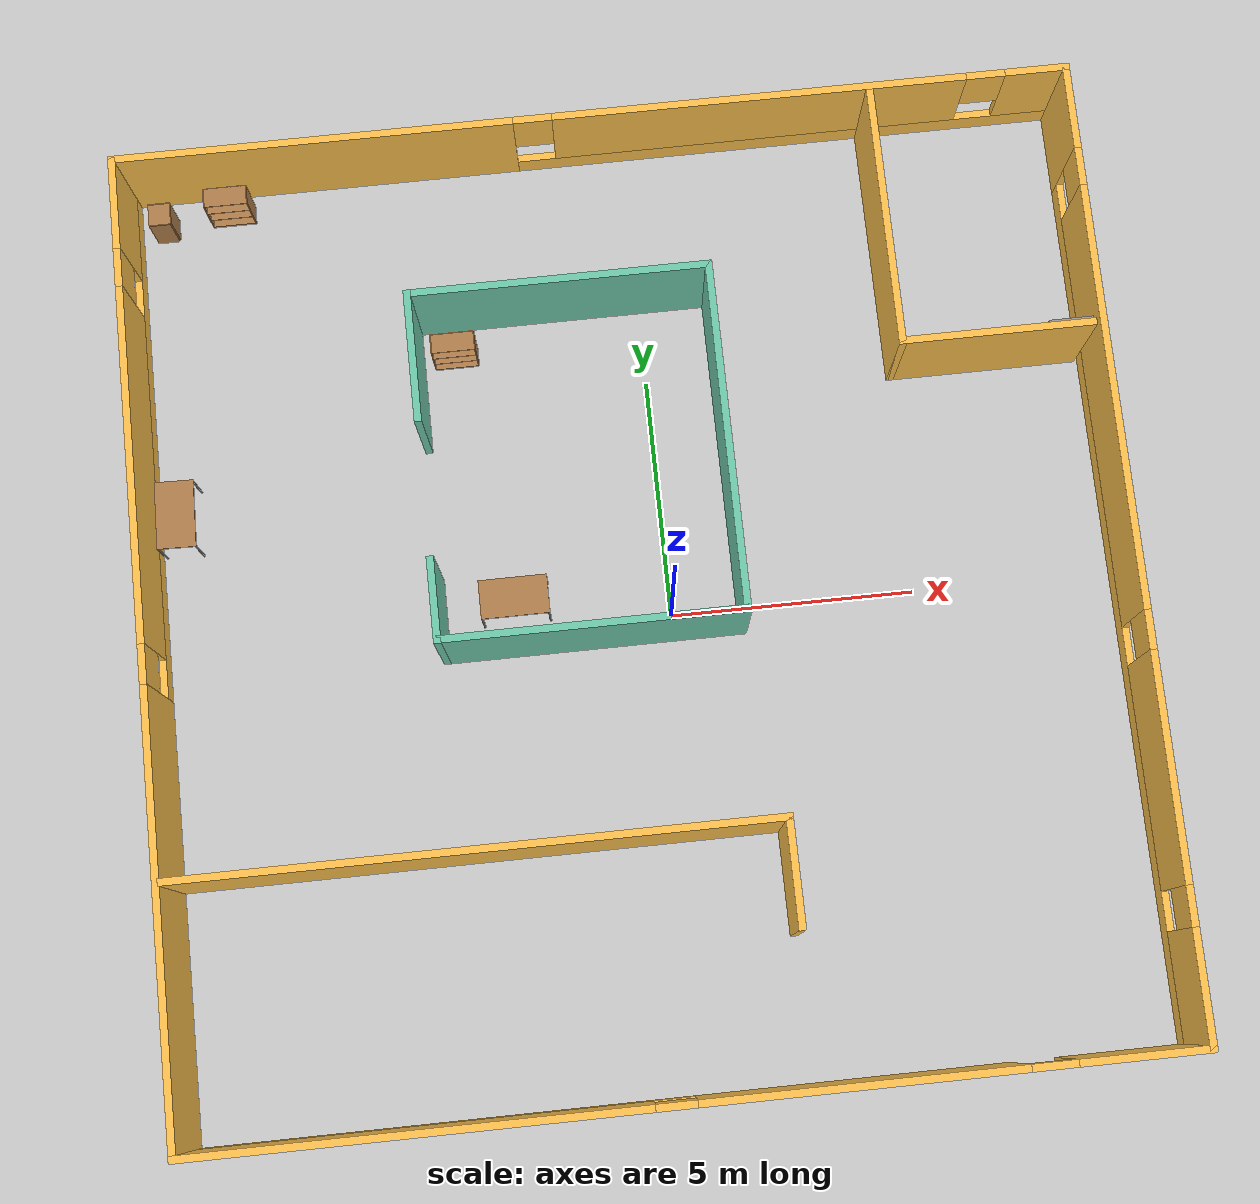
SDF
<sdf version="1.6">
 <world name="default">
  <model name="ground_plane">
   <static>1</static>
   <link name="link">
    <collision name="collision">
     <geometry><plane><normal>0 0 1</normal><size>100 100</size></plane></geometry>
     <surface><friction><ode><mu>100</mu><mu2>50</mu2></ode></friction></surface>
    </collision>
    <visual name="visual">
     <cast_shadows>0</cast_shadows>
     <geometry><plane><normal>0 0 1</normal><size>100 100</size></plane></geometry>
     <material>
      <script><uri>file://media/materials/scripts/gazebo.material</uri><name>Gazebo/Grey</name></script>
     </material>
    </visual>
   </link>
  </model>
  <model name="better_office">
   <pose>-0.62787 0.18736 0 0 -0 0</pose>
   <link name="Door_0">
    <collision name="Door_0_Collision">
     <geometry><box><size>0.9 0.17 2</size></box></geometry>
     <pose>0 0 1 0 -0 0</pose>
    </collision>
    <visual name="Door_0_Visual">
     <pose>0 0 1 0 -0 0</pose>
     <geometry><box><size>0.9 0.17 2</size></box></geometry>
     <material>
      <script><uri>file://media/materials/scripts/gazebo.material</uri><name>Gazebo/Grey</name></script>
     </material>
    </visual>
    <pose>9.27377 4.6409 0 0 -0 0</pose>
   </link>
   <link name="Wall_11">
    <pose>0 9.925 0 0 -0 0</pose>
    <visual name="Wall_11_Visual_0">
     <pose>-5.73664 0 1.25 0 -0 0</pose>
     <geometry><box><size>8.27672 0.15 2.5</size></box></geometry>
     <material>
      <script><uri>file://media/materials/scripts/gazebo.material</uri><name>Gazebo/Grey</name></script>
      <ambient>1 0.764706 0.305882 1</ambient>
     </material>
    </visual>
    <collision name="Wall_11_Collision_0">
     <geometry><box><size>8.27672 0.15 2.5</size></box></geometry>
     <pose>-5.73664 0 1.25 0 -0 0</pose>
    </collision>
    <visual name="Wall_11_Visual_1">
     <pose>4.13836 0 0.25 0 -0 0</pose>
     <geometry><box><size>11.4733 0.15 0.5</size></box></geometry>
     <material>
      <script><uri>file://media/materials/scripts/gazebo.material</uri><name>Gazebo/Grey</name></script>
      <ambient>1 0.764706 0.305882 1</ambient>
     </material>
    </visual>
    <collision name="Wall_11_Collision_1">
     <geometry><box><size>11.4733 0.15 0.5</size></box></geometry>
     <pose>4.13836 0 0.25 0 -0 0</pose>
    </collision>
    <visual name="Wall_11_Visual_2">
     <pose>3.47169 0 1.5 0 -0 0</pose>
     <geometry><box><size>8.53993 0.15 2</size></box></geometry>
     <material>
      <script><uri>file://media/materials/scripts/gazebo.material</uri><name>Gazebo/Grey</name></script>
      <ambient>1 0.764706 0.305882 1</ambient>
     </material>
    </visual>
    <collision name="Wall_11_Collision_2">
     <geometry><box><size>8.53993 0.15 2</size></box></geometry>
     <pose>3.47169 0 1.5 0 -0 0</pose>
    </collision>
    <visual name="Wall_11_Visual_3">
     <pose>9.20833 0 1.5 0 -0 0</pose>
     <geometry><box><size>1.33335 0.15 2</size></box></geometry>
     <material>
      <script><uri>file://media/materials/scripts/gazebo.material</uri><name>Gazebo/Grey</name></script>
      <ambient>1 0.764706 0.305882 1</ambient>
     </material>
    </visual>
    <collision name="Wall_11_Collision_3">
     <geometry><box><size>1.33335 0.15 2</size></box></geometry>
     <pose>9.20833 0 1.5 0 -0 0</pose>
    </collision>
    <visual name="Wall_11_Visual_4">
     <pose>-1.19828 0 1.9 0 -0 0</pose>
     <geometry><box><size>0.8 0.15 1.2</size></box></geometry>
     <material>
      <script><uri>file://media/materials/scripts/gazebo.material</uri><name>Gazebo/Grey</name></script>
      <ambient>1 0.764706 0.305882 1</ambient>
     </material>
    </visual>
    <collision name="Wall_11_Collision_4">
     <geometry><box><size>0.8 0.15 1.2</size></box></geometry>
     <pose>-1.19828 0 1.9 0 -0 0</pose>
    </collision>
    <visual name="Wall_11_Visual_5">
     <pose>8.14165 0 1.9 0 -0 0</pose>
     <geometry><box><size>0.8 0.15 1.2</size></box></geometry>
     <material>
      <script><uri>file://media/materials/scripts/gazebo.material</uri><name>Gazebo/Grey</name></script>
      <ambient>1 0.764706 0.305882 1</ambient>
     </material>
    </visual>
    <collision name="Wall_11_Collision_5">
     <geometry><box><size>0.8 0.15 1.2</size></box></geometry>
     <pose>8.14165 0 1.9 0 -0 0</pose>
    </collision>
   </link>
   <link name="Wall_12">
    <pose>9.8 0 0 0 0 -1.5708</pose>
    <visual name="Wall_12_Visual_0">
     <pose>-9.07711 0 1.25 0 -0 0</pose>
     <geometry><box><size>1.84579 0.15 2.5</size></box></geometry>
     <material>
      <script><uri>file://media/materials/scripts/gazebo.material</uri><name>Gazebo/Grey</name></script>
      <ambient>1 0.764706 0.305882 1</ambient>
     </material>
    </visual>
    <collision name="Wall_12_Collision_0">
     <geometry><box><size>1.84579 0.15 2.5</size></box></geometry>
     <pose>-9.07711 0 1.25 0 -0 0</pose>
    </collision>
    <visual name="Wall_12_Visual_1">
     <pose>0.922894 0 0.25 0 -0 0</pose>
     <geometry><box><size>18.1542 0.15 0.5</size></box></geometry>
     <material>
      <script><uri>file://media/materials/scripts/gazebo.material</uri><name>Gazebo/Grey</name></script>
      <ambient>1 0.764706 0.305882 1</ambient>
     </material>
    </visual>
    <collision name="Wall_12_Collision_1">
     <geometry><box><size>18.1542 0.15 0.5</size></box></geometry>
     <pose>0.922894 0 0.25 0 -0 0</pose>
    </collision>
    <visual name="Wall_12_Visual_2">
     <pose>-2.94273 0 1.5 0 -0 0</pose>
     <geometry><box><size>8.82296 0.15 2</size></box></geometry>
     <material>
      <script><uri>file://media/materials/scripts/gazebo.material</uri><name>Gazebo/Grey</name></script>
      <ambient>1 0.764706 0.305882 1</ambient>
     </material>
    </visual>
    <collision name="Wall_12_Collision_2">
     <geometry><box><size>8.82296 0.15 2</size></box></geometry>
     <pose>-2.94273 0 1.5 0 -0 0</pose>
    </collision>
    <visual name="Wall_12_Visual_3">
     <pose>4.55752 0 1.5 0 -0 0</pose>
     <geometry><box><size>4.57754 0.15 2</size></box></geometry>
     <material>
      <script><uri>file://media/materials/scripts/gazebo.material</uri><name>Gazebo/Grey</name></script>
      <ambient>1 0.764706 0.305882 1</ambient>
     </material>
    </visual>
    <collision name="Wall_12_Collision_3">
     <geometry><box><size>4.57754 0.15 2</size></box></geometry>
     <pose>4.55752 0 1.5 0 -0 0</pose>
    </collision>
    <visual name="Wall_12_Visual_4">
     <pose>8.82314 0 1.5 0 -0 0</pose>
     <geometry><box><size>2.35371 0.15 2</size></box></geometry>
     <material>
      <script><uri>file://media/materials/scripts/gazebo.material</uri><name>Gazebo/Grey</name></script>
      <ambient>1 0.764706 0.305882 1</ambient>
     </material>
    </visual>
    <collision name="Wall_12_Collision_4">
     <geometry><box><size>2.35371 0.15 2</size></box></geometry>
     <pose>8.82314 0 1.5 0 -0 0</pose>
    </collision>
    <visual name="Wall_12_Visual_5">
     <pose>-7.75421 0 1.9 0 -0 0</pose>
     <geometry><box><size>0.8 0.15 1.2</size></box></geometry>
     <material>
      <script><uri>file://media/materials/scripts/gazebo.material</uri><name>Gazebo/Grey</name></script>
      <ambient>1 0.764706 0.305882 1</ambient>
     </material>
    </visual>
    <collision name="Wall_12_Collision_5">
     <geometry><box><size>0.8 0.15 1.2</size></box></geometry>
     <pose>-7.75421 0 1.9 0 -0 0</pose>
    </collision>
    <visual name="Wall_12_Visual_6">
     <pose>1.86875 0 1.9 0 -0 0</pose>
     <geometry><box><size>0.8 0.15 1.2</size></box></geometry>
     <material>
      <script><uri>file://media/materials/scripts/gazebo.material</uri><name>Gazebo/Grey</name></script>
      <ambient>1 0.764706 0.305882 1</ambient>
     </material>
    </visual>
    <collision name="Wall_12_Collision_6">
     <geometry><box><size>0.8 0.15 1.2</size></box></geometry>
     <pose>1.86875 0 1.9 0 -0 0</pose>
    </collision>
    <visual name="Wall_12_Visual_7">
     <pose>7.24629 0 1.9 0 -0 0</pose>
     <geometry><box><size>0.8 0.15 1.2</size></box></geometry>
     <material>
      <script><uri>file://media/materials/scripts/gazebo.material</uri><name>Gazebo/Grey</name></script>
      <ambient>1 0.764706 0.305882 1</ambient>
     </material>
    </visual>
    <collision name="Wall_12_Collision_7">
     <geometry><box><size>0.8 0.15 1.2</size></box></geometry>
     <pose>7.24629 0 1.9 0 -0 0</pose>
    </collision>
   </link>
   <link name="Wall_13">
    <pose>0 -9.925 0 0 -0 3.14159</pose>
    <visual name="Wall_13_Visual_0">
     <pose>-8.56113 0 1.25 0 -0 0</pose>
     <geometry><box><size>2.62773 0.15 2.5</size></box></geometry>
     <material>
      <script><uri>file://media/materials/scripts/gazebo.material</uri><name>Gazebo/Grey</name></script>
      <ambient>1 0.764706 0.305882 1</ambient>
     </material>
    </visual>
    <collision name="Wall_13_Collision_0">
     <geometry><box><size>2.62773 0.15 2.5</size></box></geometry>
     <pose>-8.56113 0 1.25 0 -0 0</pose>
    </collision>
    <visual name="Wall_13_Visual_1">
     <pose>-3.19904 0 1.25 0 -0 0</pose>
     <geometry><box><size>6.29646 0.15 2.5</size></box></geometry>
     <material>
      <script><uri>file://media/materials/scripts/gazebo.material</uri><name>Gazebo/Grey</name></script>
      <ambient>1 0.764706 0.305882 1</ambient>
     </material>
    </visual>
    <collision name="Wall_13_Collision_1">
     <geometry><box><size>6.29646 0.15 2.5</size></box></geometry>
     <pose>-3.19904 0 1.25 0 -0 0</pose>
    </collision>
    <visual name="Wall_13_Visual_2">
     <pose>4.9121 0 0.25 0 -0 0</pose>
     <geometry><box><size>9.92581 0.15 0.5</size></box></geometry>
     <material>
      <script><uri>file://media/materials/scripts/gazebo.material</uri><name>Gazebo/Grey</name></script>
      <ambient>1 0.764706 0.305882 1</ambient>
     </material>
    </visual>
    <collision name="Wall_13_Collision_2">
     <geometry><box><size>9.92581 0.15 0.5</size></box></geometry>
     <pose>4.9121 0 0.25 0 -0 0</pose>
    </collision>
    <visual name="Wall_13_Visual_3">
     <pose>5.3121 0 1.5 0 -0 0</pose>
     <geometry><box><size>9.12581 0.15 2</size></box></geometry>
     <material>
      <script><uri>file://media/materials/scripts/gazebo.material</uri><name>Gazebo/Grey</name></script>
      <ambient>1 0.764706 0.305882 1</ambient>
     </material>
    </visual>
    <collision name="Wall_13_Collision_3">
     <geometry><box><size>9.12581 0.15 2</size></box></geometry>
     <pose>5.3121 0 1.5 0 -0 0</pose>
    </collision>
    <visual name="Wall_13_Visual_4">
     <pose>0.349194 0 1.9 0 -0 0</pose>
     <geometry><box><size>0.8 0.15 1.2</size></box></geometry>
     <material>
      <script><uri>file://media/materials/scripts/gazebo.material</uri><name>Gazebo/Grey</name></script>
      <ambient>1 0.764706 0.305882 1</ambient>
     </material>
    </visual>
    <collision name="Wall_13_Collision_4">
     <geometry><box><size>0.8 0.15 1.2</size></box></geometry>
     <pose>0.349194 0 1.9 0 -0 0</pose>
    </collision>
    <visual name="Wall_13_Visual_5">
     <pose>-6.79727 0 2.25 0 -0 0</pose>
     <geometry><box><size>0.9 0.15 0.5</size></box></geometry>
     <material>
      <script><uri>file://media/materials/scripts/gazebo.material</uri><name>Gazebo/Grey</name></script>
      <ambient>1 0.764706 0.305882 1</ambient>
     </material>
    </visual>
    <collision name="Wall_13_Collision_5">
     <geometry><box><size>0.9 0.15 0.5</size></box></geometry>
     <pose>-6.79727 0 2.25 0 -0 0</pose>
    </collision>
   </link>
   <link name="Wall_14">
    <pose>-9.8 0 0 0 -0 1.5708</pose>
    <visual name="Wall_14_Visual_0">
     <pose>-5.46218 0 1.25 0 -0 0</pose>
     <geometry><box><size>9.07564 0.15 2.5</size></box></geometry>
     <material>
      <script><uri>file://media/materials/scripts/gazebo.material</uri><name>Gazebo/Grey</name></script>
      <ambient>1 0.764706 0.305882 1</ambient>
     </material>
    </visual>
    <collision name="Wall_14_Collision_0">
     <geometry><box><size>9.07564 0.15 2.5</size></box></geometry>
     <pose>-5.46218 0 1.25 0 -0 0</pose>
    </collision>
    <visual name="Wall_14_Visual_1">
     <pose>4.53782 0 0.25 0 -0 0</pose>
     <geometry><box><size>10.9244 0.15 0.5</size></box></geometry>
     <material>
      <script><uri>file://media/materials/scripts/gazebo.material</uri><name>Gazebo/Grey</name></script>
      <ambient>1 0.764706 0.305882 1</ambient>
     </material>
    </visual>
    <collision name="Wall_14_Collision_1">
     <geometry><box><size>10.9244 0.15 0.5</size></box></geometry>
     <pose>4.53782 0 0.25 0 -0 0</pose>
    </collision>
    <visual name="Wall_14_Visual_2">
     <pose>3.54417 0 1.5 0 -0 0</pose>
     <geometry><box><size>7.33706 0.15 2</size></box></geometry>
     <material>
      <script><uri>file://media/materials/scripts/gazebo.material</uri><name>Gazebo/Grey</name></script>
      <ambient>1 0.764706 0.305882 1</ambient>
     </material>
    </visual>
    <collision name="Wall_14_Collision_2">
     <geometry><box><size>7.33706 0.15 2</size></box></geometry>
     <pose>3.54417 0 1.5 0 -0 0</pose>
    </collision>
    <visual name="Wall_14_Visual_3">
     <pose>9.00635 0 1.5 0 -0 0</pose>
     <geometry><box><size>1.9873 0.15 2</size></box></geometry>
     <material>
      <script><uri>file://media/materials/scripts/gazebo.material</uri><name>Gazebo/Grey</name></script>
      <ambient>1 0.764706 0.305882 1</ambient>
     </material>
    </visual>
    <collision name="Wall_14_Collision_3">
     <geometry><box><size>1.9873 0.15 2</size></box></geometry>
     <pose>9.00635 0 1.5 0 -0 0</pose>
    </collision>
    <visual name="Wall_14_Visual_4">
     <pose>-0.524364 0 1.9 0 -0 0</pose>
     <geometry><box><size>0.8 0.15 1.2</size></box></geometry>
     <material>
      <script><uri>file://media/materials/scripts/gazebo.material</uri><name>Gazebo/Grey</name></script>
      <ambient>1 0.764706 0.305882 1</ambient>
     </material>
    </visual>
    <collision name="Wall_14_Collision_4">
     <geometry><box><size>0.8 0.15 1.2</size></box></geometry>
     <pose>-0.524364 0 1.9 0 -0 0</pose>
    </collision>
    <visual name="Wall_14_Visual_5">
     <pose>7.6127 0 1.9 0 -0 0</pose>
     <geometry><box><size>0.8 0.15 1.2</size></box></geometry>
     <material>
      <script><uri>file://media/materials/scripts/gazebo.material</uri><name>Gazebo/Grey</name></script>
      <ambient>1 0.764706 0.305882 1</ambient>
     </material>
    </visual>
    <collision name="Wall_14_Collision_5">
     <geometry><box><size>0.8 0.15 1.2</size></box></geometry>
     <pose>7.6127 0 1.9 0 -0 0</pose>
    </collision>
   </link>
   <link name="Wall_17">
    <collision name="Wall_17_Collision">
     <geometry><box><size>2.75 0.15 2.5</size></box></geometry>
     <pose>0 0 1.25 0 -0 0</pose>
    </collision>
    <visual name="Wall_17_Visual">
     <pose>0 0 1.25 0 -0 0</pose>
     <geometry><box><size>2.75 0.15 2.5</size></box></geometry>
     <material>
      <script><uri>file://media/materials/scripts/gazebo.material</uri><name>Gazebo/Grey</name></script>
      <ambient>0.435294 0.796078 0.67451 1</ambient>
     </material>
    </visual>
    <pose>-4.0561 5.16257 0 0 -0 1.5708</pose>
   </link>
   <link name="Wall_18">
    <collision name="Wall_18_Collision">
     <geometry><box><size>6.25 0.15 2.5</size></box></geometry>
     <pose>0 0 1.25 0 -0 0</pose>
    </collision>
    <visual name="Wall_18_Visual">
     <pose>0 0 1.25 0 -0 0</pose>
     <geometry><box><size>6.25 0.15 2.5</size></box></geometry>
     <material>
      <script><uri>file://media/materials/scripts/gazebo.material</uri><name>Gazebo/Grey</name></script>
      <ambient>0.435294 0.796078 0.67451 1</ambient>
     </material>
    </visual>
    <pose>-1.0061 6.46257 0 0 -0 0</pose>
   </link>
   <link name="Wall_19">
    <collision name="Wall_19_Collision">
     <geometry><box><size>7.25 0.15 2.5</size></box></geometry>
     <pose>0 0 1.25 0 -0 0</pose>
    </collision>
    <visual name="Wall_19_Visual">
     <pose>0 0 1.25 0 -0 0</pose>
     <geometry><box><size>7.25 0.15 2.5</size></box></geometry>
     <material>
      <script><uri>file://media/materials/scripts/gazebo.material</uri><name>Gazebo/Grey</name></script>
      <ambient>0.435294 0.796078 0.67451 1</ambient>
     </material>
    </visual>
    <pose>2.0439 2.91257 0 0 0 -1.5708</pose>
   </link>
   <link name="Wall_20">
    <collision name="Wall_20_Collision">
     <geometry><box><size>6.25 0.15 2.5</size></box></geometry>
     <pose>0 0 1.25 0 -0 0</pose>
    </collision>
    <visual name="Wall_20_Visual">
     <pose>0 0 1.25 0 -0 0</pose>
     <geometry><box><size>6.25 0.15 2.5</size></box></geometry>
     <material>
      <script><uri>file://media/materials/scripts/gazebo.material</uri><name>Gazebo/Grey</name></script>
      <ambient>0.435294 0.796078 0.67451 1</ambient>
     </material>
    </visual>
    <pose>-1.0061 -0.637427 0 0 -0 3.14159</pose>
   </link>
   <link name="Wall_21">
    <collision name="Wall_21_Collision">
     <geometry><box><size>1.75 0.15 2.5</size></box></geometry>
     <pose>0 0 1.25 0 -0 0</pose>
    </collision>
    <visual name="Wall_21_Visual">
     <pose>0 0 1.25 0 -0 0</pose>
     <geometry><box><size>1.75 0.15 2.5</size></box></geometry>
     <material>
      <script><uri>file://media/materials/scripts/gazebo.material</uri><name>Gazebo/Grey</name></script>
      <ambient>0.435294 0.796078 0.67451 1</ambient>
     </material>
    </visual>
    <pose>-4.0561 0.162573 0 0 -0 1.5708</pose>
   </link>
   <link name="Wall_23">
    <collision name="Wall_23_Collision">
     <geometry><box><size>12.2123 0.15 2.5</size></box></geometry>
     <pose>0 0 1.25 0 -0 0</pose>
    </collision>
    <visual name="Wall_23_Visual">
     <pose>0 0 1.25 0 -0 0</pose>
     <geometry><box><size>12.2123 0.15 2.5</size></box></geometry>
     <material>
      <script><uri>file://media/materials/scripts/gazebo.material</uri><name>Gazebo/Grey</name></script>
      <ambient>1 0.764706 0.305882 1</ambient>
     </material>
    </visual>
    <pose>-3.65799 -4.76979 0 0 -0 0</pose>
   </link>
   <link name="Wall_26">
    <collision name="Wall_26_Collision">
     <geometry><box><size>5.5 0.15 2.5</size></box></geometry>
     <pose>0 0 1.25 0 -0 0</pose>
    </collision>
    <visual name="Wall_26_Visual">
     <pose>0 0 1.25 0 -0 0</pose>
     <geometry><box><size>5.5 0.15 2.5</size></box></geometry>
     <material>
      <script><uri>file://media/materials/scripts/gazebo.material</uri><name>Gazebo/Grey</name></script>
      <ambient>1 0.764706 0.305882 1</ambient>
     </material>
    </visual>
    <pose>5.73591 7.13117 0 0 0 -1.5708</pose>
   </link>
   <link name="Wall_27">
    <collision name="Wall_27_Collision">
     <geometry><box><size>4 0.15 2.5</size></box></geometry>
     <pose>0 0 1.25 0 -0 0</pose>
    </collision>
    <visual name="Wall_27_Visual">
     <pose>0 0 1.25 0 -0 0</pose>
     <geometry><box><size>4 0.15 2.5</size></box></geometry>
     <material>
      <script><uri>file://media/materials/scripts/gazebo.material</uri><name>Gazebo/Grey</name></script>
      <ambient>1 0.764706 0.305882 1</ambient>
     </material>
    </visual>
    <pose>7.66091 4.45617 0 0 -0 0</pose>
   </link>
   <link name="Wall_29">
    <collision name="Wall_29_Collision">
     <geometry><box><size>2.25 0.15 2.5</size></box></geometry>
     <pose>0 0 1.25 0 -0 0</pose>
    </collision>
    <visual name="Wall_29_Visual">
     <pose>0 0 1.25 0 -0 0</pose>
     <geometry><box><size>2.25 0.15 2.5</size></box></geometry>
     <material>
      <script><uri>file://media/materials/scripts/gazebo.material</uri><name>Gazebo/Grey</name></script>
      <ambient>1 0.764706 0.305882 1</ambient>
     </material>
    </visual>
    <pose>2.37315 -5.81979 0 0 0 -1.5708</pose>
   </link>
   <static>1</static>
  </model>
  <model name="cabinet">
   <static>1</static>
   <link name="cabinet_bottom_plate">
    <inertial>
     <pose>0 0 -1 0 -0 0</pose>
     <inertia><ixx>2.05</ixx><ixy>0</ixy><ixz>0</ixz><iyy>2.05</iyy><iyz>0</iyz><izz>2.05</izz></inertia>
     <mass>25</mass>
    </inertial>
    <collision name="cabinet_bottom_plate_geom">
     <pose>0 0 0.01 0 -0 0</pose>
     <geometry><box><size>0.45 0.45 0.02</size></box></geometry>
    </collision>
    <visual name="cabinet_bottom_plate_geom_visual">
     <pose>0 0 0.01 0 -0 0</pose>
     <geometry><box><size>0.45 0.45 0.02</size></box></geometry>
     <material>
      <script><uri>file://media/materials/scripts/gazebo.material</uri><name>Gazebo/Wood</name></script>
     </material>
    </visual>
    <collision name="cabinet_bottom_plate_geom_cabinet_back_plate">
     <pose>0.235 0 0.51 0 -0 0</pose>
     <geometry><box><size>0.02 0.45 1.02</size></box></geometry>
    </collision>
    <visual name="cabinet_bottom_plate_geom_cabinet_back_plate_visual">
     <pose>0.235 0 0.51 0 -0 0</pose>
     <geometry><box><size>0.02 0.45 1.02</size></box></geometry>
     <material>
      <script><uri>file://media/materials/scripts/gazebo.material</uri><name>Gazebo/Wood</name></script>
     </material>
    </visual>
    <collision name="cabinet_bottom_plate_geom_cabinet_left_plate">
     <pose>0 0.235 0.51 0 -0 0</pose>
     <geometry><box><size>0.45 0.02 1.02</size></box></geometry>
    </collision>
    <visual name="cabinet_bottom_plate_geom_cabinet_left_plate_visual">
     <pose>0 0.235 0.51 0 -0 0</pose>
     <geometry><box><size>0.45 0.02 1.02</size></box></geometry>
     <material>
      <script><uri>file://media/materials/scripts/gazebo.material</uri><name>Gazebo/Wood</name></script>
     </material>
    </visual>
    <collision name="cabinet_bottom_plate_geom_cabinet_middle_plate">
     <pose>0 0 0.51 0 -0 0</pose>
     <geometry><box><size>0.45 0.45 0.02</size></box></geometry>
    </collision>
    <visual name="cabinet_bottom_plate_geom_cabinet_middle_plate_visual">
     <pose>0 0 0.51 0 -0 0</pose>
     <geometry><box><size>0.45 0.45 0.02</size></box></geometry>
     <material>
      <script><uri>file://media/materials/scripts/gazebo.material</uri><name>Gazebo/Wood</name></script>
     </material>
    </visual>
    <collision name="cabinet_bottom_plate_geom_cabinet_right_plate">
     <pose>0 -0.235 0.51 0 -0 0</pose>
     <geometry><box><size>0.45 0.02 1.02</size></box></geometry>
    </collision>
    <visual name="cabinet_bottom_plate_geom_cabinet_right_plate_visual">
     <pose>0 -0.235 0.51 0 -0 0</pose>
     <geometry><box><size>0.45 0.02 1.02</size></box></geometry>
     <material>
      <script><uri>file://media/materials/scripts/gazebo.material</uri><name>Gazebo/Wood</name></script>
     </material>
    </visual>
    <collision name="cabinet_bottom_plate_geom_cabinet_top_plate">
     <pose>0 0 1.01 0 -0 0</pose>
     <geometry><box><size>0.45 0.45 0.02</size></box></geometry>
    </collision>
    <visual name="cabinet_bottom_plate_geom_cabinet_top_plate_visual">
     <pose>0 0 1.01 0 -0 0</pose>
     <geometry><box><size>0.45 0.45 0.02</size></box></geometry>
     <material>
      <script><uri>file://media/materials/scripts/gazebo.material</uri><name>Gazebo/Wood</name></script>
     </material>
    </visual>
   </link>
   <pose>-9.81477 9.43593 0 0 -0 0</pose>
  </model>
  <model name="table_clone">
   <static>0</static>
   <link name="link">
    <collision name="surface">
     <pose>0 0 1 0 -0 0</pose>
     <geometry><box><size>1.5 0.8 0.03</size></box></geometry>
     <surface><friction><ode><mu>0.6</mu><mu2>0.6</mu2></ode></friction></surface>
    </collision>
    <visual name="visual1">
     <pose>0 0 1 0 -0 0</pose>
     <geometry><box><size>1.4 0.8 0.04</size></box></geometry>
     <material>
      <script><uri>file://media/materials/scripts/gazebo.material</uri><name>Gazebo/Wood</name></script>
     </material>
    </visual>
    <collision name="front_left_leg">
     <pose>0.68 0.38 0.5 0 -0 0</pose>
     <geometry><cylinder><radius>0.02</radius><length>1</length></cylinder></geometry>
    </collision>
    <visual name="front_left_leg">
     <pose>0.68 0.38 0.5 0 -0 0</pose>
     <geometry><cylinder><radius>0.02</radius><length>1</length></cylinder></geometry>
     <material>
      <script><uri>file://media/materials/scripts/gazebo.material</uri><name>Gazebo/Grey</name></script>
     </material>
    </visual>
    <collision name="front_right_leg">
     <pose>0.68 -0.38 0.5 0 -0 0</pose>
     <geometry><cylinder><radius>0.02</radius><length>1</length></cylinder></geometry>
    </collision>
    <visual name="front_right_leg">
     <pose>0.68 -0.38 0.5 0 -0 0</pose>
     <geometry><cylinder><radius>0.02</radius><length>1</length></cylinder></geometry>
     <material>
      <script><uri>file://media/materials/scripts/gazebo.material</uri><name>Gazebo/Grey</name></script>
     </material>
    </visual>
    <collision name="back_right_leg">
     <pose>-0.68 -0.38 0.5 0 -0 0</pose>
     <geometry><cylinder><radius>0.02</radius><length>1</length></cylinder></geometry>
    </collision>
    <visual name="back_right_leg">
     <pose>-0.68 -0.38 0.5 0 -0 0</pose>
     <geometry><cylinder><radius>0.02</radius><length>1</length></cylinder></geometry>
     <material>
      <script><uri>file://media/materials/scripts/gazebo.material</uri><name>Gazebo/Grey</name></script>
     </material>
    </visual>
    <collision name="back_left_leg">
     <pose>-0.68 0.38 0.5 0 -0 0</pose>
     <geometry><cylinder><radius>0.02</radius><length>1</length></cylinder></geometry>
    </collision>
    <visual name="back_left_leg">
     <pose>-0.68 0.38 0.5 0 -0 0</pose>
     <geometry><cylinder><radius>0.02</radius><length>1</length></cylinder></geometry>
     <material>
      <script><uri>file://media/materials/scripts/gazebo.material</uri><name>Gazebo/Grey</name></script>
     </material>
    </visual>
    <inertial>
     <inertia><ixx>1</ixx><ixy>0</ixy><ixz>0</ixz><iyy>1</iyy><iyz>0</iyz><izz>1</izz></inertia>
     <mass>1</mass>
    </inertial>
   </link>
   <pose>-3.16887 0.545526 -9e-06 -1e-06 0 0</pose>
  </model>
  <model name="bookshelf_clone">
   <static>1</static>
   <link name="link">
    <inertial><mass>1</mass></inertial>
    <collision name="back">
     <pose>0 0.005 0.6 0 -0 0</pose>
     <geometry><box><size>0.9 0.01 1.2</size></box></geometry>
    </collision>
    <visual name="visual1">
     <pose>0 0.005 0.6 0 -0 0</pose>
     <geometry><box><size>0.9 0.01 1.2</size></box></geometry>
     <material>
      <script><uri>file://media/materials/scripts/gazebo.material</uri><name>Gazebo/Wood</name></script>
     </material>
    </visual>
    <collision name="left_side">
     <pose>0.45 -0.195 0.6 0 -0 0</pose>
     <geometry><box><size>0.02 0.4 1.2</size></box></geometry>
    </collision>
    <visual name="visual2">
     <pose>0.45 -0.195 0.6 0 -0 0</pose>
     <geometry><box><size>0.02 0.4 1.2</size></box></geometry>
     <material>
      <script><uri>file://media/materials/scripts/gazebo.material</uri><name>Gazebo/Wood</name></script>
     </material>
    </visual>
    <collision name="right_side">
     <pose>-0.45 -0.195 0.6 0 -0 0</pose>
     <geometry><box><size>0.02 0.4 1.2</size></box></geometry>
    </collision>
    <visual name="visual3">
     <pose>-0.45 -0.195 0.6 0 -0 0</pose>
     <geometry><box><size>0.02 0.4 1.2</size></box></geometry>
     <material>
      <script><uri>file://media/materials/scripts/gazebo.material</uri><name>Gazebo/Wood</name></script>
     </material>
    </visual>
    <collision name="bottom">
     <pose>0 -0.195 0.03 0 -0 0</pose>
     <geometry><box><size>0.88 0.4 0.06</size></box></geometry>
    </collision>
    <visual name="visual4">
     <pose>0 -0.195 0.03 0 -0 0</pose>
     <geometry><box><size>0.88 0.4 0.06</size></box></geometry>
     <material>
      <script><uri>file://media/materials/scripts/gazebo.material</uri><name>Gazebo/Wood</name></script>
     </material>
    </visual>
    <collision name="top">
     <pose>0 -0.195 1.19 0 -0 0</pose>
     <geometry><box><size>0.88 0.4 0.02</size></box></geometry>
    </collision>
    <visual name="visual5">
     <pose>0 -0.195 1.19 0 -0 0</pose>
     <geometry><box><size>0.88 0.4 0.02</size></box></geometry>
     <material>
      <script><uri>file://media/materials/scripts/gazebo.material</uri><name>Gazebo/Wood</name></script>
     </material>
    </visual>
    <collision name="low_shelf">
     <pose>0 -0.195 0.43 0 -0 0</pose>
     <geometry><box><size>0.88 0.4 0.02</size></box></geometry>
    </collision>
    <visual name="visual6">
     <pose>0 -0.195 0.43 0 -0 0</pose>
     <geometry><box><size>0.88 0.4 0.02</size></box></geometry>
     <material>
      <script><uri>file://media/materials/scripts/gazebo.material</uri><name>Gazebo/Wood</name></script>
     </material>
    </visual>
    <collision name="high_shelf">
     <pose>0 -0.195 0.8 0 -0 0</pose>
     <geometry><box><size>0.88 0.4 0.02</size></box></geometry>
    </collision>
    <visual name="visual7">
     <pose>0 -0.195 0.8 0 -0 0</pose>
     <geometry><box><size>0.88 0.4 0.02</size></box></geometry>
     <material>
      <script><uri>file://media/materials/scripts/gazebo.material</uri><name>Gazebo/Wood</name></script>
     </material>
    </visual>
   </link>
   <pose>-8.39151 9.81848 0 0 -0 0</pose>
  </model>
  <model name="bookshelf_clone_1">
   <static>1</static>
   <link name="link">
    <inertial><mass>1</mass></inertial>
    <collision name="back">
     <pose>0 0.005 0.6 0 -0 0</pose>
     <geometry><box><size>0.9 0.01 1.2</size></box></geometry>
    </collision>
    <visual name="visual1">
     <pose>0 0.005 0.6 0 -0 0</pose>
     <geometry><box><size>0.9 0.01 1.2</size></box></geometry>
     <material>
      <script><uri>file://media/materials/scripts/gazebo.material</uri><name>Gazebo/Wood</name></script>
     </material>
    </visual>
    <collision name="left_side">
     <pose>0.45 -0.195 0.6 0 -0 0</pose>
     <geometry><box><size>0.02 0.4 1.2</size></box></geometry>
    </collision>
    <visual name="visual2">
     <pose>0.45 -0.195 0.6 0 -0 0</pose>
     <geometry><box><size>0.02 0.4 1.2</size></box></geometry>
     <material>
      <script><uri>file://media/materials/scripts/gazebo.material</uri><name>Gazebo/Wood</name></script>
     </material>
    </visual>
    <collision name="right_side">
     <pose>-0.45 -0.195 0.6 0 -0 0</pose>
     <geometry><box><size>0.02 0.4 1.2</size></box></geometry>
    </collision>
    <visual name="visual3">
     <pose>-0.45 -0.195 0.6 0 -0 0</pose>
     <geometry><box><size>0.02 0.4 1.2</size></box></geometry>
     <material>
      <script><uri>file://media/materials/scripts/gazebo.material</uri><name>Gazebo/Wood</name></script>
     </material>
    </visual>
    <collision name="bottom">
     <pose>0 -0.195 0.03 0 -0 0</pose>
     <geometry><box><size>0.88 0.4 0.06</size></box></geometry>
    </collision>
    <visual name="visual4">
     <pose>0 -0.195 0.03 0 -0 0</pose>
     <geometry><box><size>0.88 0.4 0.06</size></box></geometry>
     <material>
      <script><uri>file://media/materials/scripts/gazebo.material</uri><name>Gazebo/Wood</name></script>
     </material>
    </visual>
    <collision name="top">
     <pose>0 -0.195 1.19 0 -0 0</pose>
     <geometry><box><size>0.88 0.4 0.02</size></box></geometry>
    </collision>
    <visual name="visual5">
     <pose>0 -0.195 1.19 0 -0 0</pose>
     <geometry><box><size>0.88 0.4 0.02</size></box></geometry>
     <material>
      <script><uri>file://media/materials/scripts/gazebo.material</uri><name>Gazebo/Wood</name></script>
     </material>
    </visual>
    <collision name="low_shelf">
     <pose>0 -0.195 0.43 0 -0 0</pose>
     <geometry><box><size>0.88 0.4 0.02</size></box></geometry>
    </collision>
    <visual name="visual6">
     <pose>0 -0.195 0.43 0 -0 0</pose>
     <geometry><box><size>0.88 0.4 0.02</size></box></geometry>
     <material>
      <script><uri>file://media/materials/scripts/gazebo.material</uri><name>Gazebo/Wood</name></script>
     </material>
    </visual>
    <collision name="high_shelf">
     <pose>0 -0.195 0.8 0 -0 0</pose>
     <geometry><box><size>0.88 0.4 0.02</size></box></geometry>
    </collision>
    <visual name="visual7">
     <pose>0 -0.195 0.8 0 -0 0</pose>
     <geometry><box><size>0.88 0.4 0.02</size></box></geometry>
     <material>
      <script><uri>file://media/materials/scripts/gazebo.material</uri><name>Gazebo/Wood</name></script>
     </material>
    </visual>
   </link>
   <pose>-3.93339 6.16075 0 0 -0 0</pose>
  </model>
  <model name="table_clone_clone_clone">
   <static>0</static>
   <link name="link">
    <collision name="surface">
     <pose>0 0 1 0 -0 0</pose>
     <geometry><box><size>1.5 0.8 0.03</size></box></geometry>
     <surface><friction><ode><mu>0.6</mu><mu2>0.6</mu2></ode></friction></surface>
    </collision>
    <visual name="visual1">
     <pose>0 0 1 0 -0 0</pose>
     <geometry><box><size>1.4 0.8 0.04</size></box></geometry>
     <material>
      <script><uri>file://media/materials/scripts/gazebo.material</uri><name>Gazebo/Wood</name></script>
     </material>
    </visual>
    <collision name="front_left_leg">
     <pose>0.68 0.38 0.5 0 -0 0</pose>
     <geometry><cylinder><radius>0.02</radius><length>1</length></cylinder></geometry>
    </collision>
    <visual name="front_left_leg">
     <pose>0.68 0.38 0.5 0 -0 0</pose>
     <geometry><cylinder><radius>0.02</radius><length>1</length></cylinder></geometry>
     <material>
      <script><uri>file://media/materials/scripts/gazebo.material</uri><name>Gazebo/Grey</name></script>
     </material>
    </visual>
    <collision name="front_right_leg">
     <pose>0.68 -0.38 0.5 0 -0 0</pose>
     <geometry><cylinder><radius>0.02</radius><length>1</length></cylinder></geometry>
    </collision>
    <visual name="front_right_leg">
     <pose>0.68 -0.38 0.5 0 -0 0</pose>
     <geometry><cylinder><radius>0.02</radius><length>1</length></cylinder></geometry>
     <material>
      <script><uri>file://media/materials/scripts/gazebo.material</uri><name>Gazebo/Grey</name></script>
     </material>
    </visual>
    <collision name="back_right_leg">
     <pose>-0.68 -0.38 0.5 0 -0 0</pose>
     <geometry><cylinder><radius>0.02</radius><length>1</length></cylinder></geometry>
    </collision>
    <visual name="back_right_leg">
     <pose>-0.68 -0.38 0.5 0 -0 0</pose>
     <geometry><cylinder><radius>0.02</radius><length>1</length></cylinder></geometry>
     <material>
      <script><uri>file://media/materials/scripts/gazebo.material</uri><name>Gazebo/Grey</name></script>
     </material>
    </visual>
    <collision name="back_left_leg">
     <pose>-0.68 0.38 0.5 0 -0 0</pose>
     <geometry><cylinder><radius>0.02</radius><length>1</length></cylinder></geometry>
    </collision>
    <visual name="back_left_leg">
     <pose>-0.68 0.38 0.5 0 -0 0</pose>
     <geometry><cylinder><radius>0.02</radius><length>1</length></cylinder></geometry>
     <material>
      <script><uri>file://media/materials/scripts/gazebo.material</uri><name>Gazebo/Grey</name></script>
     </material>
    </visual>
    <inertial>
     <inertia><ixx>1</ixx><ixy>0</ixy><ixz>0</ixz><iyy>1</iyy><iyz>0</iyz><izz>1</izz></inertia>
     <mass>1</mass>
    </inertial>
   </link>
   <pose>-9.88408 2.95824 -3e-06 -0 -4e-06 -1.59119</pose>
  </model>
 </world>
</sdf>
